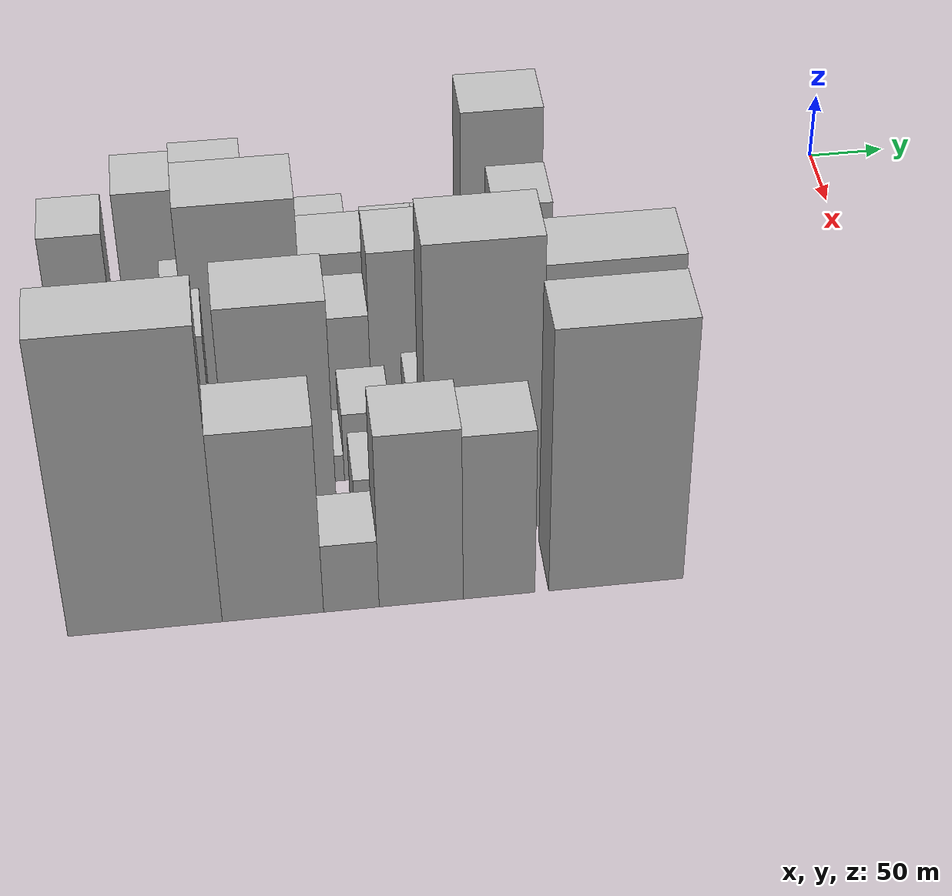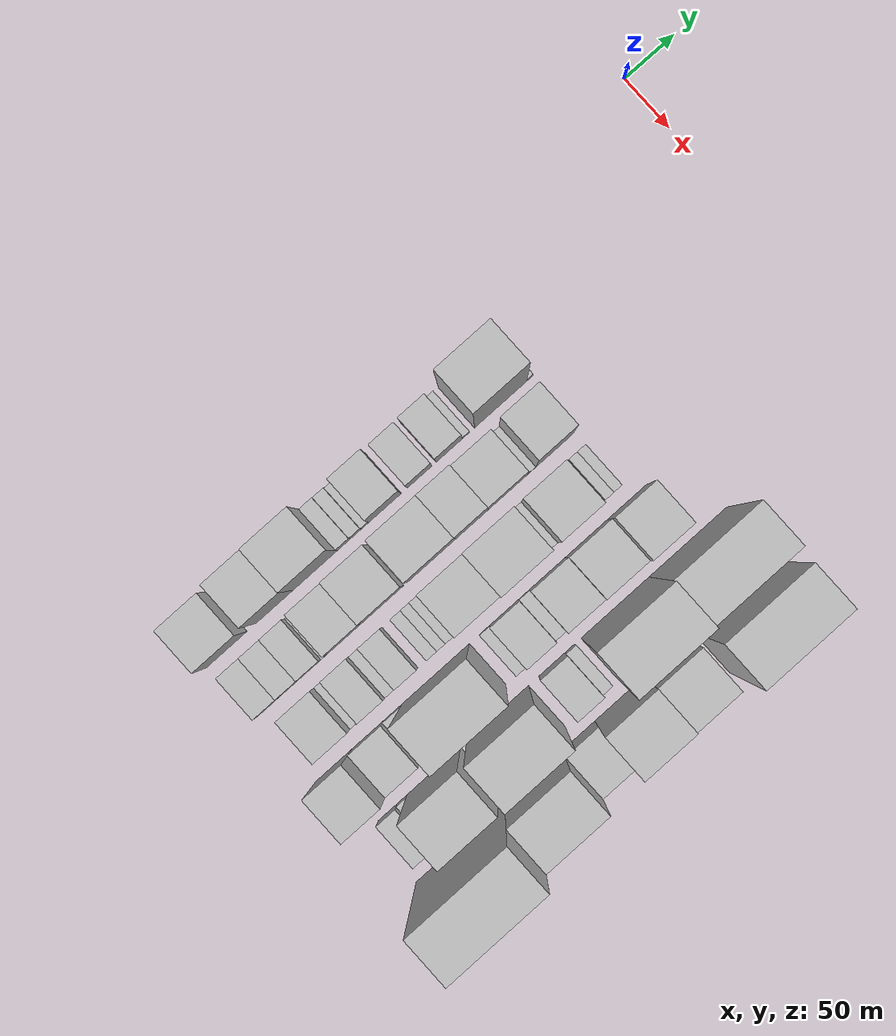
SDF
<sdf version="1.6">
 <world name="default">
  <model name="building_11">
   <static>1</static>
   <pose>100.0000 -502.6477 0 0.000000 0.000000 0.000000</pose>
   <link name="link">
    <pose>0 0 39.00 0 0 0</pose>
    <collision name="collision"><geometry><box><size>40.0000 39.8404 78.0000</size></box></geometry></collision>
    <visual name="visual">
     <cast_shadows>0</cast_shadows>
     <geometry><box><size>40.0000 39.8404 78.0000</size></box></geometry>
     <material>
      <script>
       <uri>model://HANNAS_wall/materials/scripts</uri>
       <uri>model://HANNAS_wall/materials/textures</uri>
       <name>vrc/HANNAS_wall</name>
      </script>
     </material>
    </visual>
   </link>
  </model>
  <model name="building_12">
   <static>1</static>
   <pose>100.0000 -455.4637 0 0.000000 0.000000 0.000000</pose>
   <link name="link">
    <pose>0 0 54.00 0 0 0</pose>
    <collision name="collision"><geometry><box><size>40.0000 36.5275 108.0000</size></box></geometry></collision>
    <visual name="visual">
     <cast_shadows>0</cast_shadows>
     <geometry><box><size>40.0000 36.5275 108.0000</size></box></geometry>
     <material>
      <script>
       <uri>model://HANNAS_wall/materials/scripts</uri>
       <uri>model://HANNAS_wall/materials/textures</uri>
       <name>vrc/HANNAS_wall</name>
      </script>
     </material>
    </visual>
   </link>
  </model>
  <model name="building_13">
   <static>1</static>
   <pose>100.0000 -415.2238 0 0.000000 0.000000 0.000000</pose>
   <link name="link">
    <pose>0 0 57.00 0 0 0</pose>
    <collision name="collision"><geometry><box><size>40.0000 43.9523 114.0000</size></box></geometry></collision>
    <visual name="visual">
     <cast_shadows>0</cast_shadows>
     <geometry><box><size>40.0000 43.9523 114.0000</size></box></geometry>
     <material>
      <script>
       <uri>model://HANNAS_wall/materials/scripts</uri>
       <uri>model://HANNAS_wall/materials/textures</uri>
       <name>vrc/HANNAS_wall</name>
      </script>
     </material>
    </visual>
   </link>
  </model>
  <model name="building_14">
   <static>1</static>
   <pose>100.0000 -386.8586 0 0.000000 0.000000 0.000000</pose>
   <link name="link">
    <pose>0 0 13.50 0 0 0</pose>
    <collision name="collision"><geometry><box><size>40.0000 12.7781 27.0000</size></box></geometry></collision>
    <visual name="visual">
     <cast_shadows>0</cast_shadows>
     <geometry><box><size>40.0000 12.7781 27.0000</size></box></geometry>
     <material>
      <script>
       <uri>model://HANNAS_wall/materials/scripts</uri>
       <uri>model://HANNAS_wall/materials/textures</uri>
       <name>vrc/HANNAS_wall</name>
      </script>
     </material>
    </visual>
   </link>
  </model>
  <model name="building_15">
   <static>1</static>
   <pose>100.0000 -375.0850 0 0.000000 0.000000 0.000000</pose>
   <link name="link">
    <pose>0 0 12.00 0 0 0</pose>
    <collision name="collision"><geometry><box><size>40.0000 10.7691 24.0000</size></box></geometry></collision>
    <visual name="visual">
     <cast_shadows>0</cast_shadows>
     <geometry><box><size>40.0000 10.7691 24.0000</size></box></geometry>
     <material>
      <script>
       <uri>model://HANNAS_wall/materials/scripts</uri>
       <uri>model://HANNAS_wall/materials/textures</uri>
       <name>vrc/HANNAS_wall</name>
      </script>
     </material>
    </visual>
   </link>
  </model>
  <model name="building_16">
   <static>1</static>
   <pose>100.0000 -365.9286 0 0.000000 0.000000 0.000000</pose>
   <link name="link">
    <pose>0 0 9.00 0 0 0</pose>
    <collision name="collision"><geometry><box><size>40.0000 7.5436 18.0000</size></box></geometry></collision>
    <visual name="visual">
     <cast_shadows>0</cast_shadows>
     <geometry><box><size>40.0000 7.5436 18.0000</size></box></geometry>
     <material>
      <script>
       <uri>model://HANNAS_wall/materials/scripts</uri>
       <uri>model://HANNAS_wall/materials/textures</uri>
       <name>vrc/HANNAS_wall</name>
      </script>
     </material>
    </visual>
   </link>
  </model>
  <model name="building_17">
   <static>1</static>
   <pose>100.0000 -346.2201 0 0.000000 0.000000 0.000000</pose>
   <link name="link">
    <pose>0 0 31.50 0 0 0</pose>
    <collision name="collision"><geometry><box><size>40.0000 31.8734 63.0000</size></box></geometry></collision>
    <visual name="visual">
     <cast_shadows>0</cast_shadows>
     <geometry><box><size>40.0000 31.8734 63.0000</size></box></geometry>
     <material>
      <script>
       <uri>model://HANNAS_wall/materials/scripts</uri>
       <uri>model://HANNAS_wall/materials/textures</uri>
       <name>vrc/HANNAS_wall</name>
      </script>
     </material>
    </visual>
   </link>
  </model>
  <model name="building_18">
   <static>1</static>
   <pose>100.0000 -312.0613 0 0.000000 0.000000 0.000000</pose>
   <link name="link">
    <pose>0 0 22.50 0 0 0</pose>
    <collision name="collision"><geometry><box><size>40.0000 24.4442 45.0000</size></box></geometry></collision>
    <visual name="visual">
     <cast_shadows>0</cast_shadows>
     <geometry><box><size>40.0000 24.4442 45.0000</size></box></geometry>
     <material>
      <script>
       <uri>model://HANNAS_wall/materials/scripts</uri>
       <uri>model://HANNAS_wall/materials/textures</uri>
       <name>vrc/HANNAS_wall</name>
      </script>
     </material>
    </visual>
   </link>
  </model>
  <model name="building_19">
   <static>1</static>
   <pose>100.0000 -282.9303 0 0.000000 0.000000 0.000000</pose>
   <link name="link">
    <pose>0 0 25.50 0 0 0</pose>
    <collision name="collision"><geometry><box><size>40.0000 25.8178 51.0000</size></box></geometry></collision>
    <visual name="visual">
     <cast_shadows>0</cast_shadows>
     <geometry><box><size>40.0000 25.8178 51.0000</size></box></geometry>
     <material>
      <script>
       <uri>model://HANNAS_wall/materials/scripts</uri>
       <uri>model://HANNAS_wall/materials/textures</uri>
       <name>vrc/HANNAS_wall</name>
      </script>
     </material>
    </visual>
   </link>
  </model>
  <model name="building_20">
   <static>1</static>
   <pose>100.0000 -266.3486 0 0.000000 0.000000 0.000000</pose>
   <link name="link">
    <pose>0 0 7.50 0 0 0</pose>
    <collision name="collision"><geometry><box><size>40.0000 7.3456 15.0000</size></box></geometry></collision>
    <visual name="visual">
     <cast_shadows>0</cast_shadows>
     <geometry><box><size>40.0000 7.3456 15.0000</size></box></geometry>
     <material>
      <script>
       <uri>model://HANNAS_wall/materials/scripts</uri>
       <uri>model://HANNAS_wall/materials/textures</uri>
       <name>vrc/HANNAS_wall</name>
      </script>
     </material>
    </visual>
   </link>
  </model>
  <model name="building_21">
   <static>1</static>
   <pose>100.0000 -231.8403 0 0.000000 0.000000 0.000000</pose>
   <link name="link">
    <pose>0 0 75.00 0 0 0</pose>
    <collision name="collision"><geometry><box><size>40.0000 51.6710 150.0000</size></box></geometry></collision>
    <visual name="visual">
     <cast_shadows>0</cast_shadows>
     <geometry><box><size>40.0000 51.6710 150.0000</size></box></geometry>
     <material>
      <script>
       <uri>model://HANNAS_wall/materials/scripts</uri>
       <uri>model://HANNAS_wall/materials/textures</uri>
       <name>vrc/HANNAS_wall</name>
      </script>
     </material>
    </visual>
   </link>
  </model>
  <model name="building_22">
   <static>1</static>
   <pose>100.0000 -202.8326 0 0.000000 0.000000 0.000000</pose>
   <link name="link">
    <pose>0 0 7.50 0 0 0</pose>
    <collision name="collision"><geometry><box><size>40.0000 6.3445 15.0000</size></box></geometry></collision>
    <visual name="visual">
     <cast_shadows>0</cast_shadows>
     <geometry><box><size>40.0000 6.3445 15.0000</size></box></geometry>
     <material>
      <script>
       <uri>model://HANNAS_wall/materials/scripts</uri>
       <uri>model://HANNAS_wall/materials/textures</uri>
       <name>vrc/HANNAS_wall</name>
      </script>
     </material>
    </visual>
   </link>
  </model>
  <model name="building_66">
   <static>1</static>
   <pose>152.0000 -507.6763 0 0.000000 0.000000 0.000000</pose>
   <link name="link">
    <pose>0 0 18.00 0 0 0</pose>
    <collision name="collision"><geometry><box><size>40.0000 21.5619 36.0000</size></box></geometry></collision>
    <visual name="visual">
     <cast_shadows>0</cast_shadows>
     <geometry><box><size>40.0000 21.5619 36.0000</size></box></geometry>
     <material>
      <script>
       <uri>model://HANNAS_wall/materials/scripts</uri>
       <uri>model://HANNAS_wall/materials/textures</uri>
       <name>vrc/HANNAS_wall</name>
      </script>
     </material>
    </visual>
   </link>
  </model>
  <model name="building_67">
   <static>1</static>
   <pose>152.0000 -486.7361 0 0.000000 0.000000 0.000000</pose>
   <link name="link">
    <pose>0 0 18.00 0 0 0</pose>
    <collision name="collision"><geometry><box><size>40.0000 20.3186 36.0000</size></box></geometry></collision>
    <visual name="visual">
     <cast_shadows>0</cast_shadows>
     <geometry><box><size>40.0000 20.3186 36.0000</size></box></geometry>
     <material>
      <script>
       <uri>model://HANNAS_wall/materials/scripts</uri>
       <uri>model://HANNAS_wall/materials/textures</uri>
       <name>vrc/HANNAS_wall</name>
      </script>
     </material>
    </visual>
   </link>
  </model>
  <model name="building_68">
   <static>1</static>
   <pose>152.0000 -465.6674 0 0.000000 0.000000 0.000000</pose>
   <link name="link">
    <pose>0 0 19.50 0 0 0</pose>
    <collision name="collision"><geometry><box><size>40.0000 21.8188 39.0000</size></box></geometry></collision>
    <visual name="visual">
     <cast_shadows>0</cast_shadows>
     <geometry><box><size>40.0000 21.8188 39.0000</size></box></geometry>
     <material>
      <script>
       <uri>model://HANNAS_wall/materials/scripts</uri>
       <uri>model://HANNAS_wall/materials/textures</uri>
       <name>vrc/HANNAS_wall</name>
      </script>
     </material>
    </visual>
   </link>
  </model>
  <model name="building_69">
   <static>1</static>
   <pose>152.0000 -451.7228 0 0.000000 0.000000 0.000000</pose>
   <link name="link">
    <pose>0 0 7.50 0 0 0</pose>
    <collision name="collision"><geometry><box><size>40.0000 6.0704 15.0000</size></box></geometry></collision>
    <visual name="visual">
     <cast_shadows>0</cast_shadows>
     <geometry><box><size>40.0000 6.0704 15.0000</size></box></geometry>
     <material>
      <script>
       <uri>model://HANNAS_wall/materials/scripts</uri>
       <uri>model://HANNAS_wall/materials/textures</uri>
       <name>vrc/HANNAS_wall</name>
      </script>
     </material>
    </visual>
   </link>
  </model>
  <model name="building_70">
   <static>1</static>
   <pose>152.0000 -431.6884 0 0.000000 0.000000 0.000000</pose>
   <link name="link">
    <pose>0 0 31.50 0 0 0</pose>
    <collision name="collision"><geometry><box><size>40.0000 33.9985 63.0000</size></box></geometry></collision>
    <visual name="visual">
     <cast_shadows>0</cast_shadows>
     <geometry><box><size>40.0000 33.9985 63.0000</size></box></geometry>
     <material>
      <script>
       <uri>model://HANNAS_wall/materials/scripts</uri>
       <uri>model://HANNAS_wall/materials/textures</uri>
       <name>vrc/HANNAS_wall</name>
      </script>
     </material>
    </visual>
   </link>
  </model>
  <model name="building_71">
   <static>1</static>
   <pose>152.0000 -394.3944 0 0.000000 0.000000 0.000000</pose>
   <link name="link">
    <pose>0 0 36.00 0 0 0</pose>
    <collision name="collision"><geometry><box><size>40.0000 40.5895 72.0000</size></box></geometry></collision>
    <visual name="visual">
     <cast_shadows>0</cast_shadows>
     <geometry><box><size>40.0000 40.5895 72.0000</size></box></geometry>
     <material>
      <script>
       <uri>model://HANNAS_wall/materials/scripts</uri>
       <uri>model://HANNAS_wall/materials/textures</uri>
       <name>vrc/HANNAS_wall</name>
      </script>
     </material>
    </visual>
   </link>
  </model>
  <model name="building_72">
   <static>1</static>
   <pose>152.0000 -346.4640 0 0.000000 0.000000 0.000000</pose>
   <link name="link">
    <pose>0 0 45.00 0 0 0</pose>
    <collision name="collision"><geometry><box><size>40.0000 47.2713 90.0000</size></box></geometry></collision>
    <visual name="visual">
     <cast_shadows>0</cast_shadows>
     <geometry><box><size>40.0000 47.2713 90.0000</size></box></geometry>
     <material>
      <script>
       <uri>model://HANNAS_wall/materials/scripts</uri>
       <uri>model://HANNAS_wall/materials/textures</uri>
       <name>vrc/HANNAS_wall</name>
      </script>
     </material>
    </visual>
   </link>
  </model>
  <model name="building_73">
   <static>1</static>
   <pose>152.0000 -306.9529 0 0.000000 0.000000 0.000000</pose>
   <link name="link">
    <pose>0 0 46.50 0 0 0</pose>
    <collision name="collision"><geometry><box><size>40.0000 31.7508 93.0000</size></box></geometry></collision>
    <visual name="visual">
     <cast_shadows>0</cast_shadows>
     <geometry><box><size>40.0000 31.7508 93.0000</size></box></geometry>
     <material>
      <script>
       <uri>model://HANNAS_wall/materials/scripts</uri>
       <uri>model://HANNAS_wall/materials/textures</uri>
       <name>vrc/HANNAS_wall</name>
      </script>
     </material>
    </visual>
   </link>
  </model>
  <model name="building_74">
   <static>1</static>
   <pose>152.0000 -271.5921 0 0.000000 0.000000 0.000000</pose>
   <link name="link">
    <pose>0 0 36.00 0 0 0</pose>
    <collision name="collision"><geometry><box><size>40.0000 38.9710 72.0000</size></box></geometry></collision>
    <visual name="visual">
     <cast_shadows>0</cast_shadows>
     <geometry><box><size>40.0000 38.9710 72.0000</size></box></geometry>
     <material>
      <script>
       <uri>model://HANNAS_wall/materials/scripts</uri>
       <uri>model://HANNAS_wall/materials/textures</uri>
       <name>vrc/HANNAS_wall</name>
      </script>
     </material>
    </visual>
   </link>
  </model>
  <model name="building_75">
   <static>1</static>
   <pose>152.0000 -248.0047 0 0.000000 0.000000 0.000000</pose>
   <link name="link">
    <pose>0 0 9.00 0 0 0</pose>
    <collision name="collision"><geometry><box><size>40.0000 8.2037 18.0000</size></box></geometry></collision>
    <visual name="visual">
     <cast_shadows>0</cast_shadows>
     <geometry><box><size>40.0000 8.2037 18.0000</size></box></geometry>
     <material>
      <script>
       <uri>model://HANNAS_wall/materials/scripts</uri>
       <uri>model://HANNAS_wall/materials/textures</uri>
       <name>vrc/HANNAS_wall</name>
      </script>
     </material>
    </visual>
   </link>
  </model>
  <model name="building_76">
   <static>1</static>
   <pose>152.0000 -225.6303 0 0.000000 0.000000 0.000000</pose>
   <link name="link">
    <pose>0 0 58.50 0 0 0</pose>
    <collision name="collision"><geometry><box><size>40.0000 36.5451 117.0000</size></box></geometry></collision>
    <visual name="visual">
     <cast_shadows>0</cast_shadows>
     <geometry><box><size>40.0000 36.5451 117.0000</size></box></geometry>
     <material>
      <script>
       <uri>model://HANNAS_wall/materials/scripts</uri>
       <uri>model://HANNAS_wall/materials/textures</uri>
       <name>vrc/HANNAS_wall</name>
      </script>
     </material>
    </visual>
   </link>
  </model>
  <model name="building_116">
   <static>1</static>
   <pose>204.0000 -488.2708 0 0.000000 0.000000 0.000000</pose>
   <link name="link">
    <pose>0 0 28.50 0 0 0</pose>
    <collision name="collision"><geometry><box><size>40.0000 32.8654 57.0000</size></box></geometry></collision>
    <visual name="visual">
     <cast_shadows>0</cast_shadows>
     <geometry><box><size>40.0000 32.8654 57.0000</size></box></geometry>
     <material>
      <script>
       <uri>model://HANNAS_wall/materials/scripts</uri>
       <uri>model://HANNAS_wall/materials/textures</uri>
       <name>vrc/HANNAS_wall</name>
      </script>
     </material>
    </visual>
   </link>
  </model>
  <model name="building_117">
   <static>1</static>
   <pose>204.0000 -467.5241 0 0.000000 0.000000 0.000000</pose>
   <link name="link">
    <pose>0 0 10.50 0 0 0</pose>
    <collision name="collision"><geometry><box><size>40.0000 8.6279 21.0000</size></box></geometry></collision>
    <visual name="visual">
     <cast_shadows>0</cast_shadows>
     <geometry><box><size>40.0000 8.6279 21.0000</size></box></geometry>
     <material>
      <script>
       <uri>model://HANNAS_wall/materials/scripts</uri>
       <uri>model://HANNAS_wall/materials/textures</uri>
       <name>vrc/HANNAS_wall</name>
      </script>
     </material>
    </visual>
   </link>
  </model>
  <model name="building_118">
   <static>1</static>
   <pose>204.0000 -450.7027 0 0.000000 0.000000 0.000000</pose>
   <link name="link">
    <pose>0 0 24.00 0 0 0</pose>
    <collision name="collision"><geometry><box><size>40.0000 25.0150 48.0000</size></box></geometry></collision>
    <visual name="visual">
     <cast_shadows>0</cast_shadows>
     <geometry><box><size>40.0000 25.0150 48.0000</size></box></geometry>
     <material>
      <script>
       <uri>model://HANNAS_wall/materials/scripts</uri>
       <uri>model://HANNAS_wall/materials/textures</uri>
       <name>vrc/HANNAS_wall</name>
      </script>
     </material>
    </visual>
   </link>
  </model>
  <model name="building_119">
   <static>1</static>
   <pose>204.0000 -433.2627 0 0.000000 0.000000 0.000000</pose>
   <link name="link">
    <pose>0 0 10.50 0 0 0</pose>
    <collision name="collision"><geometry><box><size>40.0000 9.8649 21.0000</size></box></geometry></collision>
    <visual name="visual">
     <cast_shadows>0</cast_shadows>
     <geometry><box><size>40.0000 9.8649 21.0000</size></box></geometry>
     <material>
      <script>
       <uri>model://HANNAS_wall/materials/scripts</uri>
       <uri>model://HANNAS_wall/materials/textures</uri>
       <name>vrc/HANNAS_wall</name>
      </script>
     </material>
    </visual>
   </link>
  </model>
  <model name="building_120">
   <static>1</static>
   <pose>204.0000 -417.5568 0 0.000000 0.000000 0.000000</pose>
   <link name="link">
    <pose>0 0 18.00 0 0 0</pose>
    <collision name="collision"><geometry><box><size>40.0000 21.5467 36.0000</size></box></geometry></collision>
    <visual name="visual">
     <cast_shadows>0</cast_shadows>
     <geometry><box><size>40.0000 21.5467 36.0000</size></box></geometry>
     <material>
      <script>
       <uri>model://HANNAS_wall/materials/scripts</uri>
       <uri>model://HANNAS_wall/materials/textures</uri>
       <name>vrc/HANNAS_wall</name>
      </script>
     </material>
    </visual>
   </link>
  </model>
  <model name="building_121">
   <static>1</static>
   <pose>204.0000 -392.7161 0 0.000000 0.000000 0.000000</pose>
   <link name="link">
    <pose>0 0 10.50 0 0 0</pose>
    <collision name="collision"><geometry><box><size>40.0000 10.1347 21.0000</size></box></geometry></collision>
    <visual name="visual">
     <cast_shadows>0</cast_shadows>
     <geometry><box><size>40.0000 10.1347 21.0000</size></box></geometry>
     <material>
      <script>
       <uri>model://HANNAS_wall/materials/scripts</uri>
       <uri>model://HANNAS_wall/materials/textures</uri>
       <name>vrc/HANNAS_wall</name>
      </script>
     </material>
    </visual>
   </link>
  </model>
  <model name="building_122">
   <static>1</static>
   <pose>204.0000 -383.4247 0 0.000000 0.000000 0.000000</pose>
   <link name="link">
    <pose>0 0 10.50 0 0 0</pose>
    <collision name="collision"><geometry><box><size>40.0000 8.4483 21.0000</size></box></geometry></collision>
    <visual name="visual">
     <cast_shadows>0</cast_shadows>
     <geometry><box><size>40.0000 8.4483 21.0000</size></box></geometry>
     <material>
      <script>
       <uri>model://HANNAS_wall/materials/scripts</uri>
       <uri>model://HANNAS_wall/materials/textures</uri>
       <name>vrc/HANNAS_wall</name>
      </script>
     </material>
    </visual>
   </link>
  </model>
  <model name="building_123">
   <static>1</static>
   <pose>204.0000 -374.2161 0 0.000000 0.000000 0.000000</pose>
   <link name="link">
    <pose>0 0 12.00 0 0 0</pose>
    <collision name="collision"><geometry><box><size>40.0000 9.9688 24.0000</size></box></geometry></collision>
    <visual name="visual">
     <cast_shadows>0</cast_shadows>
     <geometry><box><size>40.0000 9.9688 24.0000</size></box></geometry>
     <material>
      <script>
       <uri>model://HANNAS_wall/materials/scripts</uri>
       <uri>model://HANNAS_wall/materials/textures</uri>
       <name>vrc/HANNAS_wall</name>
      </script>
     </material>
    </visual>
   </link>
  </model>
  <model name="building_124">
   <static>1</static>
   <pose>204.0000 -347.3885 0 0.000000 0.000000 0.000000</pose>
   <link name="link">
    <pose>0 0 42.00 0 0 0</pose>
    <collision name="collision"><geometry><box><size>40.0000 43.6865 84.0000</size></box></geometry></collision>
    <visual name="visual">
     <cast_shadows>0</cast_shadows>
     <geometry><box><size>40.0000 43.6865 84.0000</size></box></geometry>
     <material>
      <script>
       <uri>model://HANNAS_wall/materials/scripts</uri>
       <uri>model://HANNAS_wall/materials/textures</uri>
       <name>vrc/HANNAS_wall</name>
      </script>
     </material>
    </visual>
   </link>
  </model>
  <model name="building_125">
   <static>1</static>
   <pose>204.0000 -301.6379 0 0.000000 0.000000 0.000000</pose>
   <link name="link">
    <pose>0 0 66.00 0 0 0</pose>
    <collision name="collision"><geometry><box><size>40.0000 47.8147 132.0000</size></box></geometry></collision>
    <visual name="visual">
     <cast_shadows>0</cast_shadows>
     <geometry><box><size>40.0000 47.8147 132.0000</size></box></geometry>
     <material>
      <script>
       <uri>model://HANNAS_wall/materials/scripts</uri>
       <uri>model://HANNAS_wall/materials/textures</uri>
       <name>vrc/HANNAS_wall</name>
      </script>
     </material>
    </visual>
   </link>
  </model>
  <model name="building_126">
   <static>1</static>
   <pose>204.0000 -273.4313 0 0.000000 0.000000 0.000000</pose>
   <link name="link">
    <pose>0 0 9.00 0 0 0</pose>
    <collision name="collision"><geometry><box><size>40.0000 8.5985 18.0000</size></box></geometry></collision>
    <visual name="visual">
     <cast_shadows>0</cast_shadows>
     <geometry><box><size>40.0000 8.5985 18.0000</size></box></geometry>
     <material>
      <script>
       <uri>model://HANNAS_wall/materials/scripts</uri>
       <uri>model://HANNAS_wall/materials/textures</uri>
       <name>vrc/HANNAS_wall</name>
      </script>
     </material>
    </visual>
   </link>
  </model>
  <model name="building_127">
   <static>1</static>
   <pose>204.0000 -248.8661 0 0.000000 0.000000 0.000000</pose>
   <link name="link">
    <pose>0 0 54.00 0 0 0</pose>
    <collision name="collision"><geometry><box><size>40.0000 40.5319 108.0000</size></box></geometry></collision>
    <visual name="visual">
     <cast_shadows>0</cast_shadows>
     <geometry><box><size>40.0000 40.5319 108.0000</size></box></geometry>
     <material>
      <script>
       <uri>model://HANNAS_wall/materials/scripts</uri>
       <uri>model://HANNAS_wall/materials/textures</uri>
       <name>vrc/HANNAS_wall</name>
      </script>
     </material>
    </visual>
   </link>
  </model>
  <model name="building_128">
   <static>1</static>
   <pose>204.0000 -218.3630 0 0.000000 0.000000 0.000000</pose>
   <link name="link">
    <pose>0 0 10.50 0 0 0</pose>
    <collision name="collision"><geometry><box><size>40.0000 8.4743 21.0000</size></box></geometry></collision>
    <visual name="visual">
     <cast_shadows>0</cast_shadows>
     <geometry><box><size>40.0000 8.4743 21.0000</size></box></geometry>
     <material>
      <script>
       <uri>model://HANNAS_wall/materials/scripts</uri>
       <uri>model://HANNAS_wall/materials/textures</uri>
       <name>vrc/HANNAS_wall</name>
      </script>
     </material>
    </visual>
   </link>
  </model>
  <model name="building_129">
   <static>1</static>
   <pose>204.0000 -209.9090 0 0.000000 0.000000 0.000000</pose>
   <link name="link">
    <pose>0 0 9.00 0 0 0</pose>
    <collision name="collision"><geometry><box><size>40.0000 8.4335 18.0000</size></box></geometry></collision>
    <visual name="visual">
     <cast_shadows>0</cast_shadows>
     <geometry><box><size>40.0000 8.4335 18.0000</size></box></geometry>
     <material>
      <script>
       <uri>model://HANNAS_wall/materials/scripts</uri>
       <uri>model://HANNAS_wall/materials/textures</uri>
       <name>vrc/HANNAS_wall</name>
      </script>
     </material>
    </visual>
   </link>
  </model>
  <model name="building_171">
   <static>1</static>
   <pose>256.0000 -500.2190 0 0.000000 0.000000 0.000000</pose>
   <link name="link">
    <pose>0 0 58.50 0 0 0</pose>
    <collision name="collision"><geometry><box><size>40.0000 35.7249 117.0000</size></box></geometry></collision>
    <visual name="visual">
     <cast_shadows>0</cast_shadows>
     <geometry><box><size>40.0000 35.7249 117.0000</size></box></geometry>
     <material>
      <script>
       <uri>model://HANNAS_wall/materials/scripts</uri>
       <uri>model://HANNAS_wall/materials/textures</uri>
       <name>vrc/HANNAS_wall</name>
      </script>
     </material>
    </visual>
   </link>
  </model>
  <model name="building_172">
   <static>1</static>
   <pose>256.0000 -466.5810 0 0.000000 0.000000 0.000000</pose>
   <link name="link">
    <pose>0 0 27.00 0 0 0</pose>
    <collision name="collision"><geometry><box><size>40.0000 31.5511 54.0000</size></box></geometry></collision>
    <visual name="visual">
     <cast_shadows>0</cast_shadows>
     <geometry><box><size>40.0000 31.5511 54.0000</size></box></geometry>
     <material>
      <script>
       <uri>model://HANNAS_wall/materials/scripts</uri>
       <uri>model://HANNAS_wall/materials/textures</uri>
       <name>vrc/HANNAS_wall</name>
      </script>
     </material>
    </visual>
   </link>
  </model>
  <model name="building_173">
   <static>1</static>
   <pose>256.0000 -441.9978 0 0.000000 0.000000 0.000000</pose>
   <link name="link">
    <pose>0 0 15.00 0 0 0</pose>
    <collision name="collision"><geometry><box><size>40.0000 17.6153 30.0000</size></box></geometry></collision>
    <visual name="visual">
     <cast_shadows>0</cast_shadows>
     <geometry><box><size>40.0000 17.6153 30.0000</size></box></geometry>
     <material>
      <script>
       <uri>model://HANNAS_wall/materials/scripts</uri>
       <uri>model://HANNAS_wall/materials/textures</uri>
       <name>vrc/HANNAS_wall</name>
      </script>
     </material>
    </visual>
   </link>
  </model>
  <model name="building_174">
   <static>1</static>
   <pose>256.0000 -399.9565 0 0.000000 0.000000 0.000000</pose>
   <link name="link">
    <pose>0 0 109.50 0 0 0</pose>
    <collision name="collision"><geometry><box><size>40.0000 66.4673 219.0000</size></box></geometry></collision>
    <visual name="visual">
     <cast_shadows>0</cast_shadows>
     <geometry><box><size>40.0000 66.4673 219.0000</size></box></geometry>
     <material>
      <script>
       <uri>model://HANNAS_wall/materials/scripts</uri>
       <uri>model://HANNAS_wall/materials/textures</uri>
       <name>vrc/HANNAS_wall</name>
      </script>
     </material>
    </visual>
   </link>
  </model>
  <model name="building_175">
   <static>1</static>
   <pose>256.0000 -351.8817 0 0.000000 0.000000 0.000000</pose>
   <link name="link">
    <pose>0 0 10.50 0 0 0</pose>
    <collision name="collision"><geometry><box><size>40.0000 9.6823 21.0000</size></box></geometry></collision>
    <visual name="visual">
     <cast_shadows>0</cast_shadows>
     <geometry><box><size>40.0000 9.6823 21.0000</size></box></geometry>
     <material>
      <script>
       <uri>model://HANNAS_wall/materials/scripts</uri>
       <uri>model://HANNAS_wall/materials/textures</uri>
       <name>vrc/HANNAS_wall</name>
      </script>
     </material>
    </visual>
   </link>
  </model>
  <model name="building_176">
   <static>1</static>
   <pose>256.0000 -332.5605 0 0.000000 0.000000 0.000000</pose>
   <link name="link">
    <pose>0 0 27.00 0 0 0</pose>
    <collision name="collision"><geometry><box><size>40.0000 28.9601 54.0000</size></box></geometry></collision>
    <visual name="visual">
     <cast_shadows>0</cast_shadows>
     <geometry><box><size>40.0000 28.9601 54.0000</size></box></geometry>
     <material>
      <script>
       <uri>model://HANNAS_wall/materials/scripts</uri>
       <uri>model://HANNAS_wall/materials/textures</uri>
       <name>vrc/HANNAS_wall</name>
      </script>
     </material>
    </visual>
   </link>
  </model>
  <model name="building_177">
   <static>1</static>
   <pose>256.0000 -312.9101 0 0.000000 0.000000 0.000000</pose>
   <link name="link">
    <pose>0 0 12.00 0 0 0</pose>
    <collision name="collision"><geometry><box><size>40.0000 10.3408 24.0000</size></box></geometry></collision>
    <visual name="visual">
     <cast_shadows>0</cast_shadows>
     <geometry><box><size>40.0000 10.3408 24.0000</size></box></geometry>
     <material>
      <script>
       <uri>model://HANNAS_wall/materials/scripts</uri>
       <uri>model://HANNAS_wall/materials/textures</uri>
       <name>vrc/HANNAS_wall</name>
      </script>
     </material>
    </visual>
   </link>
  </model>
  <model name="building_178">
   <static>1</static>
   <pose>256.0000 -289.7126 0 0.000000 0.000000 0.000000</pose>
   <link name="link">
    <pose>0 0 31.50 0 0 0</pose>
    <collision name="collision"><geometry><box><size>40.0000 36.0541 63.0000</size></box></geometry></collision>
    <visual name="visual">
     <cast_shadows>0</cast_shadows>
     <geometry><box><size>40.0000 36.0541 63.0000</size></box></geometry>
     <material>
      <script>
       <uri>model://HANNAS_wall/materials/scripts</uri>
       <uri>model://HANNAS_wall/materials/textures</uri>
       <name>vrc/HANNAS_wall</name>
      </script>
     </material>
    </visual>
   </link>
  </model>
  <model name="building_179">
   <static>1</static>
   <pose>256.0000 -251.1270 0 0.000000 0.000000 0.000000</pose>
   <link name="link">
    <pose>0 0 36.00 0 0 0</pose>
    <collision name="collision"><geometry><box><size>40.0000 41.1171 72.0000</size></box></geometry></collision>
    <visual name="visual">
     <cast_shadows>0</cast_shadows>
     <geometry><box><size>40.0000 41.1171 72.0000</size></box></geometry>
     <material>
      <script>
       <uri>model://HANNAS_wall/materials/scripts</uri>
       <uri>model://HANNAS_wall/materials/textures</uri>
       <name>vrc/HANNAS_wall</name>
      </script>
     </material>
    </visual>
   </link>
  </model>
  <model name="building_180">
   <static>1</static>
   <pose>256.0000 -210.7809 0 0.000000 0.000000 0.000000</pose>
   <link name="link">
    <pose>0 0 49.50 0 0 0</pose>
    <collision name="collision"><geometry><box><size>40.0000 39.5751 99.0000</size></box></geometry></collision>
    <visual name="visual">
     <cast_shadows>0</cast_shadows>
     <geometry><box><size>40.0000 39.5751 99.0000</size></box></geometry>
     <material>
      <script>
       <uri>model://HANNAS_wall/materials/scripts</uri>
       <uri>model://HANNAS_wall/materials/textures</uri>
       <name>vrc/HANNAS_wall</name>
      </script>
     </material>
    </visual>
   </link>
  </model>
  <model name="building_221">
   <static>1</static>
   <pose>308.0000 -493.8997 0 0.000000 0.000000 0.000000</pose>
   <link name="link">
    <pose>0 0 18.00 0 0 0</pose>
    <collision name="collision"><geometry><box><size>40.0000 18.6186 36.0000</size></box></geometry></collision>
    <visual name="visual">
     <cast_shadows>0</cast_shadows>
     <geometry><box><size>40.0000 18.6186 36.0000</size></box></geometry>
     <material>
      <script>
       <uri>model://HANNAS_wall/materials/scripts</uri>
       <uri>model://HANNAS_wall/materials/textures</uri>
       <name>vrc/HANNAS_wall</name>
      </script>
     </material>
    </visual>
   </link>
  </model>
  <model name="building_222">
   <static>1</static>
   <pose>308.0000 -479.8193 0 0.000000 0.000000 0.000000</pose>
   <link name="link">
    <pose>0 0 10.50 0 0 0</pose>
    <collision name="collision"><geometry><box><size>40.0000 9.5421 21.0000</size></box></geometry></collision>
    <visual name="visual">
     <cast_shadows>0</cast_shadows>
     <geometry><box><size>40.0000 9.5421 21.0000</size></box></geometry>
     <material>
      <script>
       <uri>model://HANNAS_wall/materials/scripts</uri>
       <uri>model://HANNAS_wall/materials/textures</uri>
       <name>vrc/HANNAS_wall</name>
      </script>
     </material>
    </visual>
   </link>
  </model>
  <model name="building_223">
   <static>1</static>
   <pose>308.0000 -448.6052 0 0.000000 0.000000 0.000000</pose>
   <link name="link">
    <pose>0 0 85.50 0 0 0</pose>
    <collision name="collision"><geometry><box><size>40.0000 52.8861 171.0000</size></box></geometry></collision>
    <visual name="visual">
     <cast_shadows>0</cast_shadows>
     <geometry><box><size>40.0000 52.8861 171.0000</size></box></geometry>
     <material>
      <script>
       <uri>model://HANNAS_wall/materials/scripts</uri>
       <uri>model://HANNAS_wall/materials/textures</uri>
       <name>vrc/HANNAS_wall</name>
      </script>
     </material>
    </visual>
   </link>
  </model>
  <model name="building_224">
   <static>1</static>
   <pose>308.0000 -385.5416 0 0.000000 0.000000 0.000000</pose>
   <link name="link">
    <pose>0 0 94.50 0 0 0</pose>
    <collision name="collision"><geometry><box><size>40.0000 61.2410 189.0000</size></box></geometry></collision>
    <visual name="visual">
     <cast_shadows>0</cast_shadows>
     <geometry><box><size>40.0000 61.2410 189.0000</size></box></geometry>
     <material>
      <script>
       <uri>model://HANNAS_wall/materials/scripts</uri>
       <uri>model://HANNAS_wall/materials/textures</uri>
       <name>vrc/HANNAS_wall</name>
      </script>
     </material>
    </visual>
   </link>
  </model>
  <model name="building_225">
   <static>1</static>
   <pose>308.0000 -331.8397 0 0.000000 0.000000 0.000000</pose>
   <link name="link">
    <pose>0 0 25.50 0 0 0</pose>
    <collision name="collision"><geometry><box><size>40.0000 26.1628 51.0000</size></box></geometry></collision>
    <visual name="visual">
     <cast_shadows>0</cast_shadows>
     <geometry><box><size>40.0000 26.1628 51.0000</size></box></geometry>
     <material>
      <script>
       <uri>model://HANNAS_wall/materials/scripts</uri>
       <uri>model://HANNAS_wall/materials/textures</uri>
       <name>vrc/HANNAS_wall</name>
      </script>
     </material>
    </visual>
   </link>
  </model>
  <model name="building_226">
   <static>1</static>
   <pose>308.0000 -313.8157 0 0.000000 0.000000 0.000000</pose>
   <link name="link">
    <pose>0 0 12.00 0 0 0</pose>
    <collision name="collision"><geometry><box><size>40.0000 9.8852 24.0000</size></box></geometry></collision>
    <visual name="visual">
     <cast_shadows>0</cast_shadows>
     <geometry><box><size>40.0000 9.8852 24.0000</size></box></geometry>
     <material>
      <script>
       <uri>model://HANNAS_wall/materials/scripts</uri>
       <uri>model://HANNAS_wall/materials/textures</uri>
       <name>vrc/HANNAS_wall</name>
      </script>
     </material>
    </visual>
   </link>
  </model>
  <model name="building_227">
   <static>1</static>
   <pose>308.0000 -269.1165 0 0.000000 0.000000 0.000000</pose>
   <link name="link">
    <pose>0 0 111.00 0 0 0</pose>
    <collision name="collision"><geometry><box><size>40.0000 67.5132 222.0000</size></box></geometry></collision>
    <visual name="visual">
     <cast_shadows>0</cast_shadows>
     <geometry><box><size>40.0000 67.5132 222.0000</size></box></geometry>
     <material>
      <script>
       <uri>model://HANNAS_wall/materials/scripts</uri>
       <uri>model://HANNAS_wall/materials/textures</uri>
       <name>vrc/HANNAS_wall</name>
      </script>
     </material>
    </visual>
   </link>
  </model>
  <model name="building_228">
   <static>1</static>
   <pose>308.0000 -196.5872 0 0.000000 0.000000 0.000000</pose>
   <link name="link">
    <pose>0 0 100.50 0 0 0</pose>
    <collision name="collision"><geometry><box><size>40.0000 77.5456 201.0000</size></box></geometry></collision>
    <visual name="visual">
     <cast_shadows>0</cast_shadows>
     <geometry><box><size>40.0000 77.5456 201.0000</size></box></geometry>
     <material>
      <script>
       <uri>model://HANNAS_wall/materials/scripts</uri>
       <uri>model://HANNAS_wall/materials/textures</uri>
       <name>vrc/HANNAS_wall</name>
      </script>
     </material>
    </visual>
   </link>
  </model>
  <model name="building_264">
   <static>1</static>
   <pose>360.0000 -468.9630 0 0.000000 0.000000 0.000000</pose>
   <link name="link">
    <pose>0 0 112.50 0 0 0</pose>
    <collision name="collision"><geometry><box><size>40.0000 86.9733 225.0000</size></box></geometry></collision>
    <visual name="visual">
     <cast_shadows>0</cast_shadows>
     <geometry><box><size>40.0000 86.9733 225.0000</size></box></geometry>
     <material>
      <script>
       <uri>model://HANNAS_wall/materials/scripts</uri>
       <uri>model://HANNAS_wall/materials/textures</uri>
       <name>vrc/HANNAS_wall</name>
      </script>
     </material>
    </visual>
   </link>
  </model>
  <model name="building_265">
   <static>1</static>
   <pose>360.0000 -396.6710 0 0.000000 0.000000 0.000000</pose>
   <link name="link">
    <pose>0 0 73.50 0 0 0</pose>
    <collision name="collision"><geometry><box><size>40.0000 57.6108 147.0000</size></box></geometry></collision>
    <visual name="visual">
     <cast_shadows>0</cast_shadows>
     <geometry><box><size>40.0000 57.6108 147.0000</size></box></geometry>
     <material>
      <script>
       <uri>model://HANNAS_wall/materials/scripts</uri>
       <uri>model://HANNAS_wall/materials/textures</uri>
       <name>vrc/HANNAS_wall</name>
      </script>
     </material>
    </visual>
   </link>
  </model>
  <model name="building_266">
   <static>1</static>
   <pose>360.0000 -351.9849 0 0.000000 0.000000 0.000000</pose>
   <link name="link">
    <pose>0 0 27.00 0 0 0</pose>
    <collision name="collision"><geometry><box><size>40.0000 31.7614 54.0000</size></box></geometry></collision>
    <visual name="visual">
     <cast_shadows>0</cast_shadows>
     <geometry><box><size>40.0000 31.7614 54.0000</size></box></geometry>
     <material>
      <script>
       <uri>model://HANNAS_wall/materials/scripts</uri>
       <uri>model://HANNAS_wall/materials/textures</uri>
       <name>vrc/HANNAS_wall</name>
      </script>
     </material>
    </visual>
   </link>
  </model>
  <model name="building_267">
   <static>1</static>
   <pose>360.0000 -311.9546 0 0.000000 0.000000 0.000000</pose>
   <link name="link">
    <pose>0 0 67.50 0 0 0</pose>
    <collision name="collision"><geometry><box><size>40.0000 48.2991 135.0000</size></box></geometry></collision>
    <visual name="visual">
     <cast_shadows>0</cast_shadows>
     <geometry><box><size>40.0000 48.2991 135.0000</size></box></geometry>
     <material>
      <script>
       <uri>model://HANNAS_wall/materials/scripts</uri>
       <uri>model://HANNAS_wall/materials/textures</uri>
       <name>vrc/HANNAS_wall</name>
      </script>
     </material>
    </visual>
   </link>
  </model>
  <model name="building_268">
   <static>1</static>
   <pose>360.0000 -267.1048 0 0.000000 0.000000 0.000000</pose>
   <link name="link">
    <pose>0 0 64.50 0 0 0</pose>
    <collision name="collision"><geometry><box><size>40.0000 41.4006 129.0000</size></box></geometry></collision>
    <visual name="visual">
     <cast_shadows>0</cast_shadows>
     <geometry><box><size>40.0000 41.4006 129.0000</size></box></geometry>
     <material>
      <script>
       <uri>model://HANNAS_wall/materials/scripts</uri>
       <uri>model://HANNAS_wall/materials/textures</uri>
       <name>vrc/HANNAS_wall</name>
      </script>
     </material>
    </visual>
   </link>
  </model>
  <model name="building_269">
   <static>1</static>
   <pose>360.0000 -199.2518 0 0.000000 0.000000 0.000000</pose>
   <link name="link">
    <pose>0 0 100.50 0 0 0</pose>
    <collision name="collision"><geometry><box><size>40.0000 78.3054 201.0000</size></box></geometry></collision>
    <visual name="visual">
     <cast_shadows>0</cast_shadows>
     <geometry><box><size>40.0000 78.3054 201.0000</size></box></geometry>
     <material>
      <script>
       <uri>model://HANNAS_wall/materials/scripts</uri>
       <uri>model://HANNAS_wall/materials/textures</uri>
       <name>vrc/HANNAS_wall</name>
      </script>
     </material>
    </visual>
   </link>
  </model>
 </world>
</sdf>
